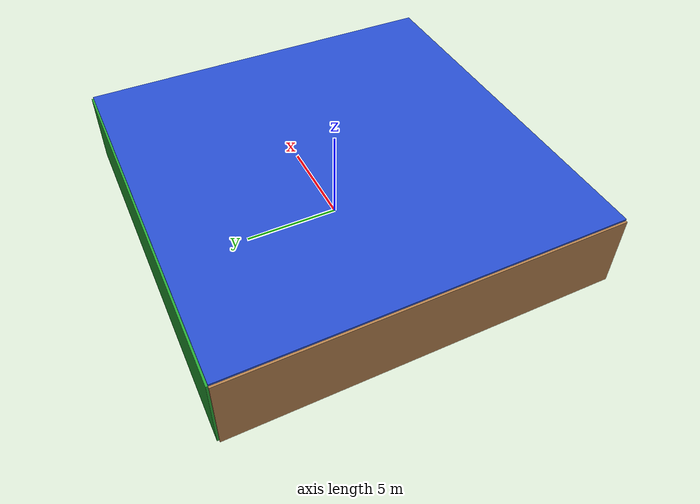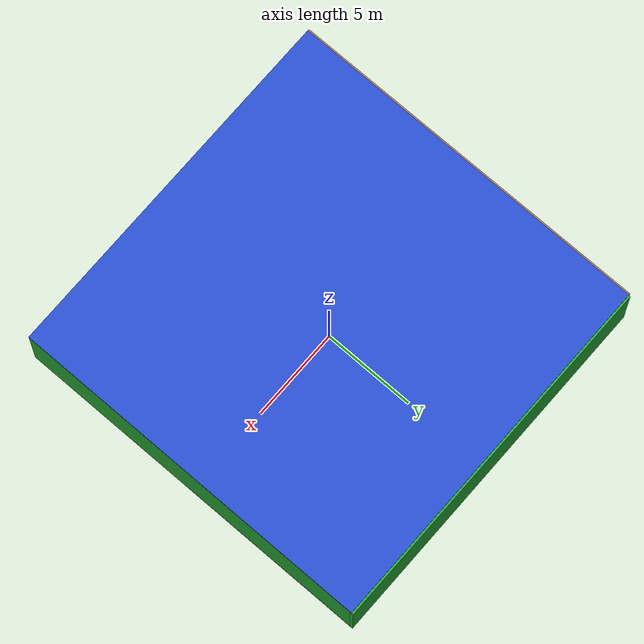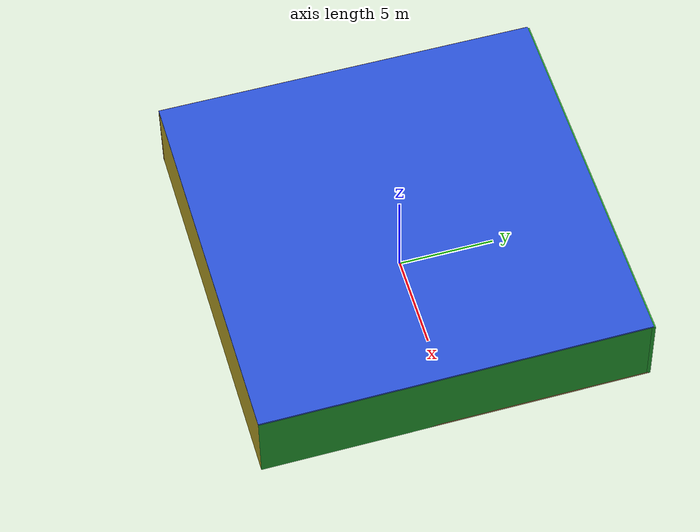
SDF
<sdf version="1.4">
 <world name="default">
  <physics type="ode">
   <max_step_size>0.001</max_step_size>
   <real_time_factor>1</real_time_factor>
   <real_time_update_rate>1000</real_time_update_rate>
   <gravity>0 0 -9.8</gravity>
  </physics>
  <scene><ambient>0.4 0.4 0.4 1</ambient><background>0.7 0.7 0.7 1</background><shadows>1</shadows></scene>
  <model name="Surrounding">
   <static>1</static>
   <link name="Ceiling">
    <collision name="Ceiling_Collision"><geometry><box><size>20 20 0.1</size></box></geometry></collision>
    <visual name="Ceiling_Visual">
     <geometry><box><size>20 20 0.1</size></box></geometry>
     <material>
      <script><uri>file://media/materials/scripts/gazebo.material</uri><name>Gazebo/BlueLaser</name></script>
     </material>
    </visual>
    <pose>0 0 4.05 0 0 0</pose>
   </link>
   <link name="Wall_South">
    <collision name="Wall_South_Collision">
     <geometry><box><size>20 0 4</size></box></geometry>
     <pose>0 0 2 0 -0 0</pose>
    </collision>
    <visual name="Wall_South_Visual">
     <pose>0 0 2 0 -0 0</pose>
     <geometry><box><size>20 0 4</size></box></geometry>
     <material>
      <script><uri>file://media/materials/scripts/gazebo.material</uri><name>Gazebo/ZincYellow</name></script>
     </material>
    </visual>
    <velocity_decay><linear>0</linear><angular>0</angular></velocity_decay>
    <pose>0 -10 0 0 -0 0</pose>
   </link>
   <link name="Wall_East">
    <collision name="Wall_21_Collision">
     <geometry><box><size>20 0 4</size></box></geometry>
     <pose>0 0 2 0 -0 0</pose>
    </collision>
    <visual name="Wall_21_Visual">
     <pose>0 0 2 0 -0 0</pose>
     <geometry><box><size>20 0 4</size></box></geometry>
     <material>
      <script><uri>file://media/materials/scripts/gazebo.material</uri><name>Gazebo/Green</name></script>
     </material>
    </visual>
    <velocity_decay><linear>0</linear><angular>0</angular></velocity_decay>
    <pose>10 0 0 0 -0 1.5708</pose>
   </link>
   <link name="Wall_North">
    <collision name="Wall_22_Collision">
     <geometry><box><size>20 0.2 4</size></box></geometry>
     <pose>0 0 2 0 -0 0</pose>
    </collision>
    <visual name="Wall_22_Visual">
     <pose>0 0 2 0 -0 0</pose>
     <geometry><box><size>20 0.2 4</size></box></geometry>
     <material>
      <script><uri>file://media/materials/scripts/gazebo.material</uri><name>Gazebo/Green</name></script>
     </material>
    </visual>
    <velocity_decay><linear>0</linear><angular>0</angular></velocity_decay>
    <pose>0 10 0 0 -0 0</pose>
   </link>
   <link name="Wall_West">
    <collision name="Wall_23_Collision">
     <geometry><box><size>20 0.2 4</size></box></geometry>
     <pose>0 0 2 0 -0 0</pose>
    </collision>
    <visual name="Wall_23_Visual">
     <pose>0 0 2 0 -0 0</pose>
     <geometry><box><size>20 0.2 4</size></box></geometry>
     <material>
      <script><uri>file://media/materials/scripts/gazebo.material</uri><name>Gazebo/Wood</name></script>
     </material>
    </visual>
    <velocity_decay><linear>0</linear><angular>0</angular></velocity_decay>
    <pose>-10 0 0 0 0 -1.5708</pose>
   </link>
   <link name="Ground_link">
    <collision name="collision">
     <pose>0 0 .05 0 -0 0</pose>
     <geometry><box><size>20 20 0.1</size></box></geometry>
    </collision>
    <visual name="visual">
     <pose>0 0 .05 0 -0 0</pose>
     <geometry><box><size>20 20 0.1</size></box></geometry>
     <material>
      <script><uri>file://media/materials/scripts/gazebo.material</uri><name>Gazebo/WoodFloor</name></script>
     </material>
    </visual>
   </link>
   <static>1</static>
  </model>
  <spherical_coordinates>
   <surface_model>EARTH_WGS84</surface_model>
   <latitude_deg>0</latitude_deg>
   <longitude_deg>0</longitude_deg>
   <elevation>0</elevation>
   <heading_deg>0</heading_deg>
  </spherical_coordinates>
  <light name="lightball_0" type="diffuse">
   <diffuse>0.8 0.8 0.8 1</diffuse>
   <specular>0.2 0.2 0.2 1</specular>
   <attenuation>
    <range>100</range>
    <constant>0.7</constant>
    <linear>0.01</linear>
    <quadratic>0.001</quadratic>
   </attenuation>
   <direction>-0.5 0.1 -0.9</direction>
   <pose>-7.0420600861 2.38809109299 3.82306312105 0 0 0</pose>
  </light>
  <light name="lightball_1" type="diffuse">
   <diffuse>0.8 0.8 0.8 1</diffuse>
   <specular>0.2 0.2 0.2 1</specular>
   <attenuation>
    <range>100</range>
    <constant>0.7</constant>
    <linear>0.01</linear>
    <quadratic>0.001</quadratic>
   </attenuation>
   <direction>-0.5 0.1 -0.9</direction>
   <pose>6.65976067448 3.23781087023 1.36285395659 0 0 0</pose>
  </light>
  <light name="lightball_2" type="diffuse">
   <diffuse>0.8 0.8 0.8 1</diffuse>
   <specular>0.2 0.2 0.2 1</specular>
   <attenuation>
    <range>100</range>
    <constant>0.7</constant>
    <linear>0.01</linear>
    <quadratic>0.001</quadratic>
   </attenuation>
   <direction>-0.5 0.1 -0.9</direction>
   <pose>-4.06122352381 4.28522964626 0.949023197834 0 0 0</pose>
  </light>
  <light name="lightball_3" type="diffuse">
   <diffuse>0.8 0.8 0.8 1</diffuse>
   <specular>0.2 0.2 0.2 1</specular>
   <attenuation>
    <range>100</range>
    <constant>0.7</constant>
    <linear>0.01</linear>
    <quadratic>0.001</quadratic>
   </attenuation>
   <direction>-0.5 0.1 -0.9</direction>
   <pose>-7.52219950368 1.29626561998 1.36364416427 0 0 0</pose>
  </light>
  <include>
   <uri>model://construction_cone</uri>
   <pose>-8.28644505031 1.65707844912 0 0 0 0.375345965533</pose>
  </include>
  <include>
   <uri>model://construction_cone</uri>
   <pose>-8.07509849561 5.50733494423 0 0 0 0.150861723337</pose>
  </include>
  <include><uri>model://cabinet</uri><pose>-5.61998350477 -6.39563942674 0 0 0 1.81820148647</pose></include>
  <include>
   <uri>model://robocup_3Dsim_goal</uri>
   <pose>-3.30578967231 0.741856824656 0 0 0 2.71886181763</pose>
  </include>
  <include>
   <uri>model://robocup_3Dsim_goal</uri>
   <pose>-1.24829766604 8.47586986908 0 0 0 2.60225516817</pose>
  </include>
  <include><uri>model://cabinet</uri><pose>1.20327469432 -8.34313160257 0 0 0 2.35223007418</pose></include>
  <include>
   <uri>model://textured_shapes</uri>
   <pose>2.67692485704 1.38828997964 0 0 0 0.303949328988</pose>
  </include>
  <include>
   <uri>model://construction_cone</uri>
   <pose>4.89458968909 -4.76016523626 0 0 0 2.52313868023</pose>
  </include>
  <include><uri>model://cabinet</uri><pose>7.86350465148 -5.02186653873 0 0 0 0.246057535942</pose></include>
 </world>
</sdf>

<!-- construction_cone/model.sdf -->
<sdf version="1.5">
  <model name="Construction Cone">
    <link name="link">
      <collision name="collision">
        <geometry>
          <mesh>
            <scale>10 10 10</scale>
            <uri>file://isr-testbed/construction_cone/meshes/construction_cone.dae</uri>
          </mesh>
        </geometry>
      </collision>
      <visual name="visual">
        <geometry>
          <mesh>
            <scale>10 10 10</scale>
            <uri>file://isr-testbed/construction_cone/meshes/construction_cone.dae</uri>
          </mesh>
        </geometry>
      </visual>
    </link>
  </model>
</sdf>

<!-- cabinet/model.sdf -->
<sdf version="1.5">
  <model name="cabinet">
    <static>true</static>
    <link name="cabinet_bottom_plate">
      <inertial>
        <pose>0 0 -1 0 0 0</pose>
        <inertia>
          <ixx>2.050000</ixx>
          <ixy>0</ixy>
          <ixz>0</ixz>
          <iyy>2.050000</iyy>
          <iyz>0</iyz>
          <izz>2.050000</izz>
        </inertia>
        <mass>25.000000</mass>
      </inertial>
      <collision name="cabinet_bottom_plate_geom">
        <pose>0 0 0.010000 0 0 0</pose>
        <geometry>
          <box>
            <size>0.450000 0.450000 0.020000</size>
          </box>
        </geometry>
      </collision>
      <visual name="cabinet_bottom_plate_geom_visual">
        <pose>0 0 0.010000 0 0 0</pose>
        <geometry>
          <box>
            <size>0.450000 0.450000 0.020000</size>
          </box>
        </geometry>
        <material>
          <script>
            <uri>model://media/materials/scripts/gazebo.material</uri>
            <name>Gazebo/Wood</name>
          </script>
        </material>
      </visual>
      <collision name="cabinet_bottom_plate_geom_cabinet_back_plate">
        <pose>0.235000 0 0.510000 0 0 0</pose>
        <geometry>
          <box>
            <size>0.020000 0.450000 1.020000</size>
          </box>
        </geometry>
      </collision>
      <visual name="cabinet_bottom_plate_geom_cabinet_back_plate_visual">
        <pose>0.235000 0 0.510000 0 0 0</pose>
        <geometry>
          <box>
            <size>0.020000 0.450000 1.020000</size>
          </box>
        </geometry>
        <material>
          <script>
            <uri>model://media/materials/scripts/gazebo.material</uri>
            <name>Gazebo/Wood</name>
          </script>
        </material>
      </visual>
      <collision name="cabinet_bottom_plate_geom_cabinet_left_plate">
        <pose>0 0.235000 0.510000 0 0 0</pose>
        <geometry>
          <box>
            <size>0.450000 0.020000 1.020000</size>
          </box>
        </geometry>
      </collision>
      <visual name="cabinet_bottom_plate_geom_cabinet_left_plate_visual">
        <pose>0 0.235000 0.510000 0 0 0</pose>
        <geometry>
          <box>
            <size>0.450000 0.020000 1.020000</size>
          </box>
        </geometry>
        <material>
          <script>
            <uri>model://media/materials/scripts/gazebo.material</uri>
            <name>Gazebo/Wood</name>
          </script>
        </material>
      </visual>
      <collision name="cabinet_bottom_plate_geom_cabinet_middle_plate">
        <pose>0 0 0.510000 0 0 0</pose>
        <geometry>
          <box>
            <size>0.450000 0.450000 0.020000</size>
          </box>
        </geometry>
      </collision>
      <visual name="cabinet_bottom_plate_geom_cabinet_middle_plate_visual">
        <pose>0 0 0.510000 0 0 0</pose>
        <geometry>
          <box>
            <size>0.450000 0.450000 0.020000</size>
          </box>
        </geometry>
        <material>
          <script>
            <uri>model://media/materials/scripts/gazebo.material</uri>
            <name>Gazebo/Wood</name>
          </script>
        </material>
      </visual>
      <collision name="cabinet_bottom_plate_geom_cabinet_right_plate">
        <pose>0 -0.235000 0.510000 0 0 0</pose>
        <geometry>
          <box>
            <size>0.450000 0.020000 1.020000</size>
          </box>
        </geometry>
      </collision>
      <visual name="cabinet_bottom_plate_geom_cabinet_right_plate_visual">
        <pose>0 -0.235000 0.510000 0 0 0</pose>
        <geometry>
          <box>
            <size>0.450000 0.020000 1.020000</size>
          </box>
        </geometry>
        <material>
          <script>
            <uri>model://media/materials/scripts/gazebo.material</uri>
            <name>Gazebo/Wood</name>
          </script>
        </material>
      </visual>
      <collision name="cabinet_bottom_plate_geom_cabinet_top_plate">
        <pose>0 0 1.010000 0 0 0</pose>
        <geometry>
          <box>
            <size>0.450000 0.450000 0.020000</size>
          </box>
        </geometry>
      </collision>
      <visual name="cabinet_bottom_plate_geom_cabinet_top_plate_visual">
        <pose>0 0 1.010000 0 0 0</pose>
        <geometry>
          <box>
            <size>0.450000 0.450000 0.020000</size>
          </box>
        </geometry>
        <material>
          <script>
            <uri>model://media/materials/scripts/gazebo.material</uri>
            <name>Gazebo/Wood</name>
          </script>
        </material>
      </visual>
    </link>
  </model>
</sdf>

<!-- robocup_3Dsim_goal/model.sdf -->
<sdf version="1.5">
  <model name="robocup_3d_goal">
    <static>true</static>
    <link name="left_post">
      <pose>0 1.05 0.45 0 0 0</pose>
      <collision name="collision">
        <geometry>
          <cylinder>
            <radius>0.05</radius>
            <length>0.9</length>
          </cylinder>
        </geometry>
      </collision>
      <visual name="visual">
        <geometry>
          <cylinder>
            <radius>0.05</radius>
            <length>0.9</length>
          </cylinder>
        </geometry>
        <material>
          <script>
            <uri>file://media/materials/scripts/gazebo.material</uri>
            <name>Gazebo/ZincYellow</name>
          </script>
        </material>
      </visual>
    </link>
    <link name="left_support_horiz_lower">
      <pose>0.30 1.05 0.01 0 0 0</pose>
      <collision name="collision">
        <geometry>
          <box>
            <size>0.50 0.02 0.02</size>
          </box>
        </geometry>
      </collision>
      <visual name="visual">
        <geometry>
          <box>
            <size>0.50 0.02 0.02</size>
          </box>
        </geometry>
        <material>
          <script>
            <uri>file://media/materials/scripts/gazebo.material</uri>
            <name>Gazebo/White</name>
          </script>
        </material>
      </visual>
    </link>
    <link name="left_support_horiz_upper">
      <pose>0.30 1.05 0.79 0 0 0</pose>
      <collision name="collision">
        <geometry>
          <box>
            <size>0.50 0.02 0.02</size>
          </box>
        </geometry>
      </collision>
      <visual name="visual">
        <geometry>
          <box>
            <size>0.50 0.02 0.02</size>
          </box>
        </geometry>
        <material>
          <script>
            <uri>file://media/materials/scripts/gazebo.material</uri>
            <name>Gazebo/White</name>
          </script>
        </material>
      </visual>
    </link>
    <link name="left_support_vertical">
      <pose>0.56 1.05 0.4 0 1.5708 0</pose>
      <collision name="collision">
        <geometry>
          <box>
            <size>0.80 0.02 0.02</size>
          </box>
        </geometry>
      </collision>
      <visual name="visual">
        <geometry>
          <box>
            <size>0.80 0.02 0.02</size>
          </box>
        </geometry>
        <material>
          <script>
            <uri>file://media/materials/scripts/gazebo.material</uri>
            <name>Gazebo/White</name>
          </script>
        </material>
      </visual>
    </link>
    <link name="right_support_horiz_lower">
      <pose>0.30 -1.05 0.01 0 0 0</pose>
      <collision name="collision">
        <geometry>
          <box>
            <size>0.50 0.02 0.02</size>
          </box>
        </geometry>
      </collision>
      <visual name="visual">
        <geometry>
          <box>
            <size>0.50 0.02 0.02</size>
          </box>
        </geometry>
        <material>
          <script>
            <uri>file://media/materials/scripts/gazebo.material</uri>
            <name>Gazebo/White</name>
          </script>
        </material>
      </visual>
    </link>
    <link name="right_support_horiz_upper">
      <pose>0.30 -1.05 0.79 0 0 0</pose>
      <collision name="collision">
        <geometry>
          <box>
            <size>0.50 0.02 0.02</size>
          </box>
        </geometry>
      </collision>
      <visual name="visual">
        <geometry>
          <box>
            <size>0.50 0.02 0.02</size>
          </box>
        </geometry>
        <material>
          <script>
            <uri>file://media/materials/scripts/gazebo.material</uri>
            <name>Gazebo/White</name>
          </script>
        </material>
      </visual>
    </link>
    <link name="right_support_vertical">
      <pose>0.56 -1.05 0.4 0 1.5708 0</pose>
      <collision name="collision">
        <geometry>
          <box>
            <size>0.80 0.02 0.02</size>
          </box>
        </geometry>
      </collision>
      <visual name="visual">
        <geometry>
          <box>
            <size>0.80 0.02 0.02</size>
          </box>
        </geometry>
        <material>
          <script>
            <uri>file://media/materials/scripts/gazebo.material</uri>
            <name>Gazebo/White</name>
          </script>
        </material>
      </visual>
    </link>
    <link name="center_support_horiz_lower">
      <pose>0.56 0 0.01 0 1.5708 0</pose>
      <collision name="collision">
        <geometry>
          <box>
            <size>0.02 2.08 0.02</size>
          </box>
        </geometry>
      </collision>
      <visual name="visual">
        <geometry>
          <box>
            <size>0.02 2.08 0.02</size>
          </box>
        </geometry>
        <material>
          <script>
            <uri>file://media/materials/scripts/gazebo.material</uri>
            <name>Gazebo/White</name>
          </script>
        </material>
      </visual>
    </link>
    <link name="center_support_horiz_upper">
      <pose>0.56 0 0.79 0 1.5708 0</pose>
      <collision name="collision">
        <geometry>
          <box>
            <size>0.02 2.08 0.02</size>
          </box>
        </geometry>
      </collision>
      <visual name="visual">
        <geometry>
          <box>
            <size>0.02 2.08 0.02</size>
          </box>
        </geometry>
        <material>
          <script>
            <uri>file://media/materials/scripts/gazebo.material</uri>
            <name>Gazebo/White</name>
          </script>
        </material>
      </visual>
    </link>
    <link name="right_post">
      <pose>0 -1.05 0.45 0 0 0</pose>
      <collision name="collision">
        <geometry>
          <cylinder>
            <radius>0.05</radius>
            <length>0.9</length>
          </cylinder>
        </geometry>
      </collision>
      <visual name="visual">
        <geometry>
          <cylinder>
            <radius>0.05</radius>
            <length>0.9</length>
          </cylinder>
        </geometry>
        <material>
          <script>
            <uri>file://media/materials/scripts/gazebo.material</uri>
            <name>Gazebo/ZincYellow</name>
          </script>
        </material>
      </visual>
    </link>
    <link name="crossbar">
      <pose>0 0 0.85 1.57 1.57 0</pose>
      <collision name="collision">
        <geometry>
          <cylinder>
            <radius>0.05</radius>
            <length>2.0</length>
          </cylinder>
        </geometry>
      </collision>
      <visual name="visual">
        <geometry>
          <cylinder>
            <radius>0.05</radius>
            <length>2.0</length>
          </cylinder>
        </geometry>
        <material>
          <script>
            <uri>file://media/materials/scripts/gazebo.material</uri>
            <name>Gazebo/ZincYellow</name>
          </script>
        </material>
      </visual>
    </link>
    <link name="center_net">
      <pose>0.56 0 0.40 0 0 0</pose>
      <collision name="collision">
        <geometry>
          <box>
            <size>0.01 2.1 0.80</size>
          </box>
        </geometry>
      </collision>
      <visual name="visual">
        <geometry>
          <box>
            <size>0.01 2.1 0.80</size>
          </box>
        </geometry>
        <material>
          <script>
            <uri>model://../model_source/models/robocup09_spl_field/materials/scripts/</uri>
            <uri>model://../model_source/models/robocup09_spl_field/materials/textures/</uri>
            <name>RoboCup/Net</name>
          </script>
        </material>
      </visual>
    </link>
    <link name="left_net">
      <pose>0.30 1.05 0.40 0 0 0</pose>
      <collision name="collision">
        <geometry>
          <box>
            <size>0.50 0.01 0.76</size>
          </box>
        </geometry>
      </collision>
      <visual name="visual">
        <geometry>
          <box>
            <size>0.50 0.01 0.76</size>
          </box>
        </geometry>
        <material>
          <script>
            <uri>model://../model_source/models/robocup09_spl_field/materials/scripts/</uri>
            <uri>model://../model_source/models/robocup09_spl_field/materials/textures/</uri>
            <name>RoboCup/Net</name>
          </script>
        </material>
      </visual>
    </link>
    <link name="right_net">
      <pose>0.30 -1.05 0.40 0 0 0</pose>
      <collision name="collision">
        <geometry>
          <box>
            <size>0.50 0.01 0.76</size>
          </box>
        </geometry>
      </collision>
      <visual name="visual">
        <geometry>
          <box>
            <size>0.50 0.01 0.76</size>
          </box>
        </geometry>
        <material>
          <script>
            <uri>model://../model_source/models/robocup09_spl_field/materials/scripts/</uri>
            <uri>model://../model_source/models/robocup09_spl_field/materials/textures/</uri>
            <name>RoboCup/Net</name>
          </script>
        </material>
      </visual>
    </link>
  </model>
</sdf>

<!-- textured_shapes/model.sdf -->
<sdf version="1.6">
  <model name="textured_shapes">
    <pose>0 0 0.5 0 0 0</pose>
    <link name="box">
      <pose>0 -1.5 0 0 0 0</pose>
      <collision name="collision">
        <geometry>
          <box>
            <size>1 1 1</size>
          </box>
        </geometry>
      </collision>
      <visual name="visual">
        <geometry>
          <box>
            <size>1 1 1</size>
          </box>
        </geometry>
        <material>
          <script>
            <uri>model://../model_source/models/textured_shapes/materials/scripts</uri>
            <uri>model://../model_source/models/textured_shapes/materials/textures</uri>
            <name>TexturedShape/Squares</name>
          </script>
        </material>
      </visual>
    </link>
    <link name="sphere">
      <collision name="collision">
        <geometry>
          <sphere>
            <radius>0.5</radius>
          </sphere>
        </geometry>
      </collision>
      <visual name="visual">
        <geometry>
          <sphere>
            <radius>0.5</radius>
          </sphere>
        </geometry>
        <material>
          <script>
            <uri>model://../model_source/models/textured_shapes/materials/scripts</uri>
            <uri>model://../model_source/models/textured_shapes/materials/textures</uri>
            <name>TexturedShape/Squares</name>
          </script>
        </material>
      </visual>
    </link>
    <link name="cylinder">
      <pose>0 1.5 0 0 0 0</pose>
      <collision name="collision">
        <geometry>
          <cylinder>
            <radius>0.5</radius>
            <length>1</length>
          </cylinder>
        </geometry>
      </collision>
      <visual name="visual">
        <geometry>
          <cylinder>
            <radius>0.5</radius>
            <length>1</length>
          </cylinder>
        </geometry>
        <material>
          <script>
            <uri>model://../model_source/models/textured_shapes/materials/scripts</uri>
            <uri>model://../model_source/models/textured_shapes/materials/textures</uri>
            <name>TexturedShape/Squares</name>
          </script>
        </material>
      </visual>
    </link>
  </model>
</sdf>
